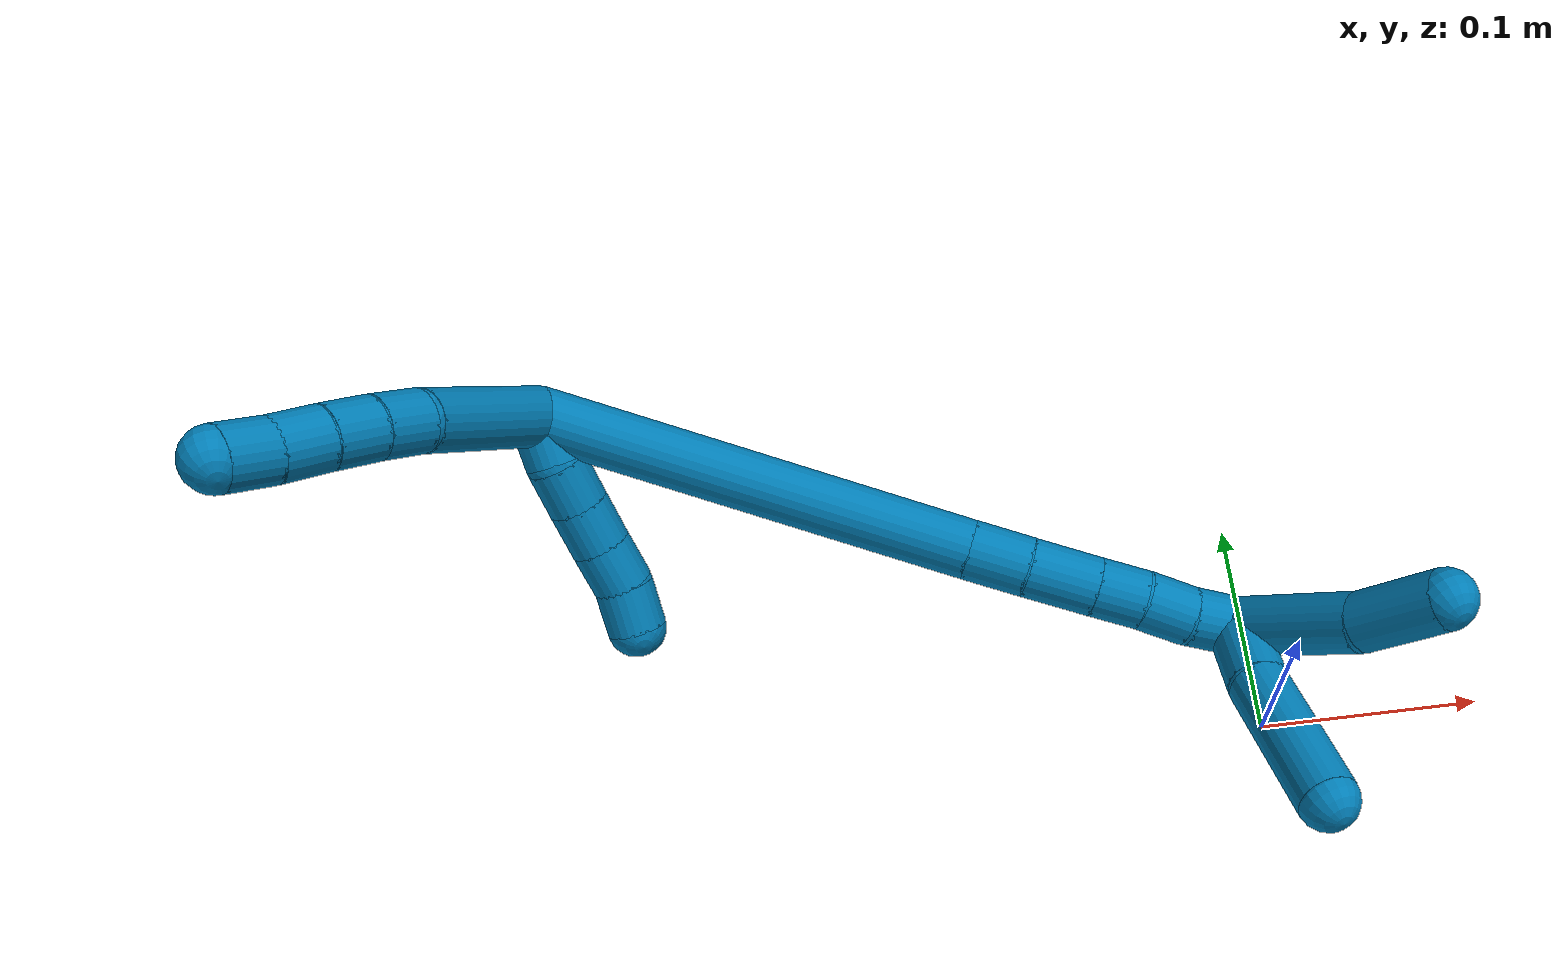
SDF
<sdf version="1.7">
 <world name="default">
  <model name="9">
   <static>0</static>
   <link name="9">
    <collision name="collision-cylinder-e_1_2_8">
     <pose>-0.028275 -0.010981 -0.016847 2.56395 -0.952572 -2.09651</pose>
     <geometry><cylinder><radius>0.0125</radius><length>0.069394</length></cylinder></geometry>
     <surface>
      <friction><ode><mu>1.16</mu><mu2>1.16</mu2><slip1>0</slip1><slip2>0</slip2></ode></friction>
      <contact><ode><kp>1e+06</kp><kd>1</kd><max_vel>0</max_vel><min_depth>0.001</min_depth></ode></contact>
     </surface>
    </collision>
    <visual name="visual-cylinder-e_1_2_8">
     <pose>-0.028275 -0.010981 -0.016847 2.56395 -0.952572 -2.09651</pose>
     <geometry><cylinder><radius>0.0125</radius><length>0.069394</length></cylinder></geometry>
     <material><ambient>0 0.490196 0.709804 1</ambient></material>
    </visual>
    <collision name="collision-cylinder-e_2_8_9">
     <pose>-0.06571 -0.023186 -0.037686 2.8441 -1.14321 -2.68383</pose>
     <geometry><cylinder><radius>0.0125</radius><length>0.020134</length></cylinder></geometry>
     <surface>
      <friction><ode><mu>1.16</mu><mu2>1.16</mu2><slip1>0</slip1><slip2>0</slip2></ode></friction>
      <contact><ode><kp>1e+06</kp><kd>1</kd><max_vel>0</max_vel><min_depth>0.001</min_depth></ode></contact>
     </surface>
    </collision>
    <visual name="visual-cylinder-e_2_8_9">
     <pose>-0.06571 -0.023186 -0.037686 2.8441 -1.14321 -2.68383</pose>
     <geometry><cylinder><radius>0.0125</radius><length>0.020134</length></cylinder></geometry>
     <material><ambient>0 0.490196 0.709804 1</ambient></material>
    </visual>
    <collision name="collision-cylinder-e_3_9_10">
     <pose>-0.084172 -0.024929 -0.045579 3.00913 -1.17042 -2.94206</pose>
     <geometry><cylinder><radius>0.0125</radius><length>0.0202</length></cylinder></geometry>
     <surface>
      <friction><ode><mu>1.16</mu><mu2>1.16</mu2><slip1>0</slip1><slip2>0</slip2></ode></friction>
      <contact><ode><kp>1e+06</kp><kd>1</kd><max_vel>0</max_vel><min_depth>0.001</min_depth></ode></contact>
     </surface>
    </collision>
    <visual name="visual-cylinder-e_3_9_10">
     <pose>-0.084172 -0.024929 -0.045579 3.00913 -1.17042 -2.94206</pose>
     <geometry><cylinder><radius>0.0125</radius><length>0.0202</length></cylinder></geometry>
     <material><ambient>0 0.490196 0.709804 1</ambient></material>
    </visual>
    <collision name="collision-cylinder-e_4_10_11">
     <pose>-0.102859 -0.025334 -0.053116 -3.11008 -1.20109 3.09558</pose>
     <geometry><cylinder><radius>0.0125</radius><length>0.020131</length></cylinder></geometry>
     <surface>
      <friction><ode><mu>1.16</mu><mu2>1.16</mu2><slip1>0</slip1><slip2>0</slip2></ode></friction>
      <contact><ode><kp>1e+06</kp><kd>1</kd><max_vel>0</max_vel><min_depth>0.001</min_depth></ode></contact>
     </surface>
    </collision>
    <visual name="visual-cylinder-e_4_10_11">
     <pose>-0.102859 -0.025334 -0.053116 -3.11008 -1.20109 3.09558</pose>
     <geometry><cylinder><radius>0.0125</radius><length>0.020131</length></cylinder></geometry>
     <material><ambient>0 0.490196 0.709804 1</ambient></material>
    </visual>
    <collision name="collision-cylinder-e_5_11_6">
     <pose>-0.121681 -0.025868 -0.060208 2.95632 -1.2141 -2.87564</pose>
     <geometry><cylinder><radius>0.0125</radius><length>0.020142</length></cylinder></geometry>
     <surface>
      <friction><ode><mu>1.16</mu><mu2>1.16</mu2><slip1>0</slip1><slip2>0</slip2></ode></friction>
      <contact><ode><kp>1e+06</kp><kd>1</kd><max_vel>0</max_vel><min_depth>0.001</min_depth></ode></contact>
     </surface>
    </collision>
    <visual name="visual-cylinder-e_5_11_6">
     <pose>-0.121681 -0.025868 -0.060208 2.95632 -1.2141 -2.87564</pose>
     <geometry><cylinder><radius>0.0125</radius><length>0.020142</length></cylinder></geometry>
     <material><ambient>0 0.490196 0.709804 1</ambient></material>
    </visual>
    <collision name="collision-cylinder-e_1_2_12">
     <pose>0.003474 0.007326 -0.005853 -2.24489 0.354789 -0.713509</pose>
     <geometry><cylinder><radius>0.0125</radius><length>0.02</length></cylinder></geometry>
     <surface>
      <friction><ode><mu>1.16</mu><mu2>1.16</mu2><slip1>0</slip1><slip2>0</slip2></ode></friction>
      <contact><ode><kp>1e+06</kp><kd>1</kd><max_vel>0</max_vel><min_depth>0.001</min_depth></ode></contact>
     </surface>
    </collision>
    <visual name="visual-cylinder-e_1_2_12">
     <pose>0.003474 0.007326 -0.005853 -2.24489 0.354789 -0.713509</pose>
     <geometry><cylinder><radius>0.0125</radius><length>0.02</length></cylinder></geometry>
     <material><ambient>0 0.490196 0.709804 1</ambient></material>
    </visual>
    <collision name="collision-cylinder-e_2_12_13">
     <pose>0.012064 0.022312 -0.0156 -2.04108 0.537015 -0.843251</pose>
     <geometry><cylinder><radius>0.0125</radius><length>0.02</length></cylinder></geometry>
     <surface>
      <friction><ode><mu>1.16</mu><mu2>1.16</mu2><slip1>0</slip1><slip2>0</slip2></ode></friction>
      <contact><ode><kp>1e+06</kp><kd>1</kd><max_vel>0</max_vel><min_depth>0.001</min_depth></ode></contact>
     </surface>
    </collision>
    <visual name="visual-cylinder-e_2_12_13">
     <pose>0.012064 0.022312 -0.0156 -2.04108 0.537015 -0.843251</pose>
     <geometry><cylinder><radius>0.0125</radius><length>0.02</length></cylinder></geometry>
     <material><ambient>0 0.490196 0.709804 1</ambient></material>
    </visual>
    <collision name="collision-cylinder-e_3_13_14">
     <pose>0.022367 0.037441 -0.023652 -2.07875 0.54537 -0.8881</pose>
     <geometry><cylinder><radius>0.0125</radius><length>0.02</length></cylinder></geometry>
     <surface>
      <friction><ode><mu>1.16</mu><mu2>1.16</mu2><slip1>0</slip1><slip2>0</slip2></ode></friction>
      <contact><ode><kp>1e+06</kp><kd>1</kd><max_vel>0</max_vel><min_depth>0.001</min_depth></ode></contact>
     </surface>
    </collision>
    <visual name="visual-cylinder-e_3_13_14">
     <pose>0.022367 0.037441 -0.023652 -2.07875 0.54537 -0.8881</pose>
     <geometry><cylinder><radius>0.0125</radius><length>0.02</length></cylinder></geometry>
     <material><ambient>0 0.490196 0.709804 1</ambient></material>
    </visual>
    <collision name="collision-cylinder-e_4_14_15">
     <pose>0.032828 0.052136 -0.032281 -2.12496 0.555552 -0.946083</pose>
     <geometry><cylinder><radius>0.0125</radius><length>0.02</length></cylinder></geometry>
     <surface>
      <friction><ode><mu>1.16</mu><mu2>1.16</mu2><slip1>0</slip1><slip2>0</slip2></ode></friction>
      <contact><ode><kp>1e+06</kp><kd>1</kd><max_vel>0</max_vel><min_depth>0.001</min_depth></ode></contact>
     </surface>
    </collision>
    <visual name="visual-cylinder-e_4_14_15">
     <pose>0.032828 0.052136 -0.032281 -2.12496 0.555552 -0.946083</pose>
     <geometry><cylinder><radius>0.0125</radius><length>0.02</length></cylinder></geometry>
     <material><ambient>0 0.490196 0.709804 1</ambient></material>
    </visual>
    <collision name="collision-cylinder-e_5_15_5">
     <pose>0.041464 0.067336 -0.041761 -2.13163 0.342833 -0.606984</pose>
     <geometry><cylinder><radius>0.0125</radius><length>0.02</length></cylinder></geometry>
     <surface>
      <friction><ode><mu>1.16</mu><mu2>1.16</mu2><slip1>0</slip1><slip2>0</slip2></ode></friction>
      <contact><ode><kp>1e+06</kp><kd>1</kd><max_vel>0</max_vel><min_depth>0.001</min_depth></ode></contact>
     </surface>
    </collision>
    <visual name="visual-cylinder-e_5_15_5">
     <pose>0.041464 0.067336 -0.041761 -2.13163 0.342833 -0.606984</pose>
     <geometry><cylinder><radius>0.0125</radius><length>0.02</length></cylinder></geometry>
     <material><ambient>0 0.490196 0.709804 1</ambient></material>
    </visual>
    <collision name="collision-cylinder-e_1_2_16">
     <pose>0.077683 -0.004465 -0.047503 3.04788 1.02001 2.97433</pose>
     <geometry><cylinder><radius>0.0125</radius><length>0.18233</length></cylinder></geometry>
     <surface>
      <friction><ode><mu>1.16</mu><mu2>1.16</mu2><slip1>0</slip1><slip2>0</slip2></ode></friction>
      <contact><ode><kp>1e+06</kp><kd>1</kd><max_vel>0</max_vel><min_depth>0.001</min_depth></ode></contact>
     </surface>
    </collision>
    <visual name="visual-cylinder-e_1_2_16">
     <pose>0.077683 -0.004465 -0.047503 3.04788 1.02001 2.97433</pose>
     <geometry><cylinder><radius>0.0125</radius><length>0.18233</length></cylinder></geometry>
     <material><ambient>0 0.490196 0.709804 1</ambient></material>
    </visual>
    <collision name="collision-cylinder-e_2_16_17">
     <pose>0.166004 -0.009735 -0.10158 3.01961 1.01396 2.92257</pose>
     <geometry><cylinder><radius>0.0125</radius><length>0.025064</length></cylinder></geometry>
     <surface>
      <friction><ode><mu>1.16</mu><mu2>1.16</mu2><slip1>0</slip1><slip2>0</slip2></ode></friction>
      <contact><ode><kp>1e+06</kp><kd>1</kd><max_vel>0</max_vel><min_depth>0.001</min_depth></ode></contact>
     </surface>
    </collision>
    <visual name="visual-cylinder-e_2_16_17">
     <pose>0.166004 -0.009735 -0.10158 3.01961 1.01396 2.92257</pose>
     <geometry><cylinder><radius>0.0125</radius><length>0.025064</length></cylinder></geometry>
     <material><ambient>0 0.490196 0.709804 1</ambient></material>
    </visual>
    <collision name="collision-cylinder-e_3_17_18">
     <pose>0.189447 -0.010972 -0.114994 3.07868 1.0793 3.03662</pose>
     <geometry><cylinder><radius>0.0125</radius><length>0.029047</length></cylinder></geometry>
     <surface>
      <friction><ode><mu>1.16</mu><mu2>1.16</mu2><slip1>0</slip1><slip2>0</slip2></ode></friction>
      <contact><ode><kp>1e+06</kp><kd>1</kd><max_vel>0</max_vel><min_depth>0.001</min_depth></ode></contact>
     </surface>
    </collision>
    <visual name="visual-cylinder-e_3_17_18">
     <pose>0.189447 -0.010972 -0.114994 3.07868 1.0793 3.03662</pose>
     <geometry><cylinder><radius>0.0125</radius><length>0.029047</length></cylinder></geometry>
     <material><ambient>0 0.490196 0.709804 1</ambient></material>
    </visual>
    <collision name="collision-cylinder-e_4_18_19">
     <pose>0.211382 -0.01173 -0.126535 3.07213 1.09442 3.02766</pose>
     <geometry><cylinder><radius>0.0125</radius><length>0.020549</length></cylinder></geometry>
     <surface>
      <friction><ode><mu>1.16</mu><mu2>1.16</mu2><slip1>0</slip1><slip2>0</slip2></ode></friction>
      <contact><ode><kp>1e+06</kp><kd>1</kd><max_vel>0</max_vel><min_depth>0.001</min_depth></ode></contact>
     </surface>
    </collision>
    <visual name="visual-cylinder-e_4_18_19">
     <pose>0.211382 -0.01173 -0.126535 3.07213 1.09442 3.02766</pose>
     <geometry><cylinder><radius>0.0125</radius><length>0.020549</length></cylinder></geometry>
     <material><ambient>0 0.490196 0.709804 1</ambient></material>
    </visual>
    <collision name="collision-cylinder-e_5_19_20">
     <pose>0.230059 -0.011298 -0.135724 -2.97403 1.12578 -2.87697</pose>
     <geometry><cylinder><radius>0.0125</radius><length>0.021154</length></cylinder></geometry>
     <surface>
      <friction><ode><mu>1.16</mu><mu2>1.16</mu2><slip1>0</slip1><slip2>0</slip2></ode></friction>
      <contact><ode><kp>1e+06</kp><kd>1</kd><max_vel>0</max_vel><min_depth>0.001</min_depth></ode></contact>
     </surface>
    </collision>
    <visual name="visual-cylinder-e_5_19_20">
     <pose>0.230059 -0.011298 -0.135724 -2.97403 1.12578 -2.87697</pose>
     <geometry><cylinder><radius>0.0125</radius><length>0.021154</length></cylinder></geometry>
     <material><ambient>0 0.490196 0.709804 1</ambient></material>
    </visual>
    <collision name="collision-cylinder-e_6_20_1">
     <pose>0.249955 -0.010456 -0.143724 -3.11808 1.24369 -3.10879</pose>
     <geometry><cylinder><radius>0.0125</radius><length>0.021857</length></cylinder></geometry>
     <surface>
      <friction><ode><mu>1.16</mu><mu2>1.16</mu2><slip1>0</slip1><slip2>0</slip2></ode></friction>
      <contact><ode><kp>1e+06</kp><kd>1</kd><max_vel>0</max_vel><min_depth>0.001</min_depth></ode></contact>
     </surface>
    </collision>
    <visual name="visual-cylinder-e_6_20_1">
     <pose>0.249955 -0.010456 -0.143724 -3.11808 1.24369 -3.10879</pose>
     <geometry><cylinder><radius>0.0125</radius><length>0.021857</length></cylinder></geometry>
     <material><ambient>0 0.490196 0.709804 1</ambient></material>
    </visual>
    <collision name="collision-cylinder-e_1_1_21">
     <pose>0.267936 -0.031192 -0.168689 2.37125 0.249963 0.601011</pose>
     <geometry><cylinder><radius>0.0125</radius><length>0.061709</length></cylinder></geometry>
     <surface>
      <friction><ode><mu>1.16</mu><mu2>1.16</mu2><slip1>0</slip1><slip2>0</slip2></ode></friction>
      <contact><ode><kp>1e+06</kp><kd>1</kd><max_vel>0</max_vel><min_depth>0.001</min_depth></ode></contact>
     </surface>
    </collision>
    <visual name="visual-cylinder-e_1_1_21">
     <pose>0.267936 -0.031192 -0.168689 2.37125 0.249963 0.601011</pose>
     <geometry><cylinder><radius>0.0125</radius><length>0.061709</length></cylinder></geometry>
     <material><ambient>0 0.490196 0.709804 1</ambient></material>
    </visual>
    <collision name="collision-cylinder-e_2_21_4">
     <pose>0.281043 -0.067237 -0.200378 2.16254 0.290001 0.535024</pose>
     <geometry><cylinder><radius>0.0125</radius><length>0.038291</length></cylinder></geometry>
     <surface>
      <friction><ode><mu>1.16</mu><mu2>1.16</mu2><slip1>0</slip1><slip2>0</slip2></ode></friction>
      <contact><ode><kp>1e+06</kp><kd>1</kd><max_vel>0</max_vel><min_depth>0.001</min_depth></ode></contact>
     </surface>
    </collision>
    <visual name="visual-cylinder-e_2_21_4">
     <pose>0.281043 -0.067237 -0.200378 2.16254 0.290001 0.535024</pose>
     <geometry><cylinder><radius>0.0125</radius><length>0.038291</length></cylinder></geometry>
     <material><ambient>0 0.490196 0.709804 1</ambient></material>
    </visual>
    <collision name="collision-cylinder-e_1_1_22">
     <pose>0.255729 -0.01063 -0.164299 3.12656 -0.26187 -3.02754</pose>
     <geometry><cylinder><radius>0.0125</radius><length>0.035339</length></cylinder></geometry>
     <surface>
      <friction><ode><mu>1.16</mu><mu2>1.16</mu2><slip1>0</slip1><slip2>0</slip2></ode></friction>
      <contact><ode><kp>1e+06</kp><kd>1</kd><max_vel>0</max_vel><min_depth>0.001</min_depth></ode></contact>
     </surface>
    </collision>
    <visual name="visual-cylinder-e_1_1_22">
     <pose>0.255729 -0.01063 -0.164299 3.12656 -0.26187 -3.02754</pose>
     <geometry><cylinder><radius>0.0125</radius><length>0.035339</length></cylinder></geometry>
     <material><ambient>0 0.490196 0.709804 1</ambient></material>
    </visual>
    <collision name="collision-cylinder-e_2_22_3">
     <pose>0.248015 -0.01211 -0.213519 3.10356 -0.097277 -2.39664</pose>
     <geometry><cylinder><radius>0.0125</radius><length>0.064661</length></cylinder></geometry>
     <surface>
      <friction><ode><mu>1.16</mu><mu2>1.16</mu2><slip1>0</slip1><slip2>0</slip2></ode></friction>
      <contact><ode><kp>1e+06</kp><kd>1</kd><max_vel>0</max_vel><min_depth>0.001</min_depth></ode></contact>
     </surface>
    </collision>
    <visual name="visual-cylinder-e_2_22_3">
     <pose>0.248015 -0.01211 -0.213519 3.10356 -0.097277 -2.39664</pose>
     <geometry><cylinder><radius>0.0125</radius><length>0.064661</length></cylinder></geometry>
     <material><ambient>0 0.490196 0.709804 1</ambient></material>
    </visual>
    <collision name="collision-sphere-3">
     <pose>0.244875 -0.013333 -0.245673 0 -0 0</pose>
     <geometry><sphere><radius>0.0125</radius></sphere></geometry>
     <surface>
      <friction><ode><mu>1.16</mu><mu2>1.16</mu2><slip1>0</slip1><slip2>0</slip2></ode></friction>
      <contact><ode><kp>1e+06</kp><kd>1</kd><max_vel>0</max_vel><min_depth>0.001</min_depth></ode></contact>
     </surface>
    </collision>
    <visual name="visual-sphere-3">
     <pose>0.244875 -0.013333 -0.245673 0 -0 0</pose>
     <geometry><sphere><radius>0.0125</radius></sphere></geometry>
     <material><ambient>0 0.490196 0.709804 1</ambient></material>
    </visual>
    <collision name="collision-sphere-22">
     <pose>0.251155 -0.010886 -0.181364 0 -0 0</pose>
     <geometry><sphere><radius>0.0125</radius></sphere></geometry>
     <surface>
      <friction><ode><mu>1.16</mu><mu2>1.16</mu2><slip1>0</slip1><slip2>0</slip2></ode></friction>
      <contact><ode><kp>1e+06</kp><kd>1</kd><max_vel>0</max_vel><min_depth>0.001</min_depth></ode></contact>
     </surface>
    </collision>
    <visual name="visual-sphere-22">
     <pose>0.251155 -0.010886 -0.181364 0 -0 0</pose>
     <geometry><sphere><radius>0.0125</radius></sphere></geometry>
     <material><ambient>0 0.490196 0.709804 1</ambient></material>
    </visual>
    <collision name="collision-sphere-4">
     <pose>0.286518 -0.082464 -0.210612 0 -0 0</pose>
     <geometry><sphere><radius>0.0125</radius></sphere></geometry>
     <surface>
      <friction><ode><mu>1.16</mu><mu2>1.16</mu2><slip1>0</slip1><slip2>0</slip2></ode></friction>
      <contact><ode><kp>1e+06</kp><kd>1</kd><max_vel>0</max_vel><min_depth>0.001</min_depth></ode></contact>
     </surface>
    </collision>
    <visual name="visual-sphere-4">
     <pose>0.286518 -0.082464 -0.210612 0 -0 0</pose>
     <geometry><sphere><radius>0.0125</radius></sphere></geometry>
     <material><ambient>0 0.490196 0.709804 1</ambient></material>
    </visual>
    <collision name="collision-sphere-21">
     <pose>0.275569 -0.05201 -0.190144 0 -0 0</pose>
     <geometry><sphere><radius>0.0125</radius></sphere></geometry>
     <surface>
      <friction><ode><mu>1.16</mu><mu2>1.16</mu2><slip1>0</slip1><slip2>0</slip2></ode></friction>
      <contact><ode><kp>1e+06</kp><kd>1</kd><max_vel>0</max_vel><min_depth>0.001</min_depth></ode></contact>
     </surface>
    </collision>
    <visual name="visual-sphere-21">
     <pose>0.275569 -0.05201 -0.190144 0 -0 0</pose>
     <geometry><sphere><radius>0.0125</radius></sphere></geometry>
     <material><ambient>0 0.490196 0.709804 1</ambient></material>
    </visual>
    <collision name="collision-sphere-1">
     <pose>0.260304 -0.010373 -0.147234 0 -0 0</pose>
     <geometry><sphere><radius>0.0125</radius></sphere></geometry>
     <surface>
      <friction><ode><mu>1.16</mu><mu2>1.16</mu2><slip1>0</slip1><slip2>0</slip2></ode></friction>
      <contact><ode><kp>1e+06</kp><kd>1</kd><max_vel>0</max_vel><min_depth>0.001</min_depth></ode></contact>
     </surface>
    </collision>
    <visual name="visual-sphere-1">
     <pose>0.260304 -0.010373 -0.147234 0 -0 0</pose>
     <geometry><sphere><radius>0.0125</radius></sphere></geometry>
     <material><ambient>0 0.490196 0.709804 1</ambient></material>
    </visual>
    <collision name="collision-sphere-6">
     <pose>-0.131118 -0.026516 -0.063664 0 -0 0</pose>
     <geometry><sphere><radius>0.0125</radius></sphere></geometry>
     <surface>
      <friction><ode><mu>1.16</mu><mu2>1.16</mu2><slip1>0</slip1><slip2>0</slip2></ode></friction>
      <contact><ode><kp>1e+06</kp><kd>1</kd><max_vel>0</max_vel><min_depth>0.001</min_depth></ode></contact>
     </surface>
    </collision>
    <visual name="visual-sphere-6">
     <pose>-0.131118 -0.026516 -0.063664 0 -0 0</pose>
     <geometry><sphere><radius>0.0125</radius></sphere></geometry>
     <material><ambient>0 0.490196 0.709804 1</ambient></material>
    </visual>
    <collision name="collision-sphere-11">
     <pose>-0.112244 -0.02522 -0.056751 0 -0 0</pose>
     <geometry><sphere><radius>0.0125</radius></sphere></geometry>
     <surface>
      <friction><ode><mu>1.16</mu><mu2>1.16</mu2><slip1>0</slip1><slip2>0</slip2></ode></friction>
      <contact><ode><kp>1e+06</kp><kd>1</kd><max_vel>0</max_vel><min_depth>0.001</min_depth></ode></contact>
     </surface>
    </collision>
    <visual name="visual-sphere-11">
     <pose>-0.112244 -0.02522 -0.056751 0 -0 0</pose>
     <geometry><sphere><radius>0.0125</radius></sphere></geometry>
     <material><ambient>0 0.490196 0.709804 1</ambient></material>
    </visual>
    <collision name="collision-sphere-10">
     <pose>-0.093473 -0.025449 -0.049481 0 -0 0</pose>
     <geometry><sphere><radius>0.0125</radius></sphere></geometry>
     <surface>
      <friction><ode><mu>1.16</mu><mu2>1.16</mu2><slip1>0</slip1><slip2>0</slip2></ode></friction>
      <contact><ode><kp>1e+06</kp><kd>1</kd><max_vel>0</max_vel><min_depth>0.001</min_depth></ode></contact>
     </surface>
    </collision>
    <visual name="visual-sphere-10">
     <pose>-0.093473 -0.025449 -0.049481 0 -0 0</pose>
     <geometry><sphere><radius>0.0125</radius></sphere></geometry>
     <material><ambient>0 0.490196 0.709804 1</ambient></material>
    </visual>
    <collision name="collision-sphere-9">
     <pose>-0.074871 -0.024409 -0.041677 0 -0 0</pose>
     <geometry><sphere><radius>0.0125</radius></sphere></geometry>
     <surface>
      <friction><ode><mu>1.16</mu><mu2>1.16</mu2><slip1>0</slip1><slip2>0</slip2></ode></friction>
      <contact><ode><kp>1e+06</kp><kd>1</kd><max_vel>0</max_vel><min_depth>0.001</min_depth></ode></contact>
     </surface>
    </collision>
    <visual name="visual-sphere-9">
     <pose>-0.074871 -0.024409 -0.041677 0 -0 0</pose>
     <geometry><sphere><radius>0.0125</radius></sphere></geometry>
     <material><ambient>0 0.490196 0.709804 1</ambient></material>
    </visual>
    <collision name="collision-sphere-2">
     <geometry><sphere><radius>0.0125</radius></sphere></geometry>
     <surface>
      <friction><ode><mu>1.16</mu><mu2>1.16</mu2><slip1>0</slip1><slip2>0</slip2></ode></friction>
      <contact><ode><kp>1e+06</kp><kd>1</kd><max_vel>0</max_vel><min_depth>0.001</min_depth></ode></contact>
     </surface>
    </collision>
    <visual name="visual-sphere-2">
     <geometry><sphere><radius>0.0125</radius></sphere></geometry>
     <material><ambient>0 0.490196 0.709804 1</ambient></material>
    </visual>
    <collision name="collision-sphere-19">
     <pose>0.220512 -0.012057 -0.131235 0 -0 0</pose>
     <geometry><sphere><radius>0.0125</radius></sphere></geometry>
     <surface>
      <friction><ode><mu>1.16</mu><mu2>1.16</mu2><slip1>0</slip1><slip2>0</slip2></ode></friction>
      <contact><ode><kp>1e+06</kp><kd>1</kd><max_vel>0</max_vel><min_depth>0.001</min_depth></ode></contact>
     </surface>
    </collision>
    <visual name="visual-sphere-19">
     <pose>0.220512 -0.012057 -0.131235 0 -0 0</pose>
     <geometry><sphere><radius>0.0125</radius></sphere></geometry>
     <material><ambient>0 0.490196 0.709804 1</ambient></material>
    </visual>
    <collision name="collision-sphere-8">
     <pose>-0.056549 -0.021962 -0.033694 0 -0 0</pose>
     <geometry><sphere><radius>0.0125</radius></sphere></geometry>
     <surface>
      <friction><ode><mu>1.16</mu><mu2>1.16</mu2><slip1>0</slip1><slip2>0</slip2></ode></friction>
      <contact><ode><kp>1e+06</kp><kd>1</kd><max_vel>0</max_vel><min_depth>0.001</min_depth></ode></contact>
     </surface>
    </collision>
    <visual name="visual-sphere-8">
     <pose>-0.056549 -0.021962 -0.033694 0 -0 0</pose>
     <geometry><sphere><radius>0.0125</radius></sphere></geometry>
     <material><ambient>0 0.490196 0.709804 1</ambient></material>
    </visual>
    <collision name="collision-sphere-12">
     <pose>0.006948 0.014652 -0.011706 0 -0 0</pose>
     <geometry><sphere><radius>0.0125</radius></sphere></geometry>
     <surface>
      <friction><ode><mu>1.16</mu><mu2>1.16</mu2><slip1>0</slip1><slip2>0</slip2></ode></friction>
      <contact><ode><kp>1e+06</kp><kd>1</kd><max_vel>0</max_vel><min_depth>0.001</min_depth></ode></contact>
     </surface>
    </collision>
    <visual name="visual-sphere-12">
     <pose>0.006948 0.014652 -0.011706 0 -0 0</pose>
     <geometry><sphere><radius>0.0125</radius></sphere></geometry>
     <material><ambient>0 0.490196 0.709804 1</ambient></material>
    </visual>
    <collision name="collision-sphere-13">
     <pose>0.017179 0.029972 -0.019493 0 -0 0</pose>
     <geometry><sphere><radius>0.0125</radius></sphere></geometry>
     <surface>
      <friction><ode><mu>1.16</mu><mu2>1.16</mu2><slip1>0</slip1><slip2>0</slip2></ode></friction>
      <contact><ode><kp>1e+06</kp><kd>1</kd><max_vel>0</max_vel><min_depth>0.001</min_depth></ode></contact>
     </surface>
    </collision>
    <visual name="visual-sphere-13">
     <pose>0.017179 0.029972 -0.019493 0 -0 0</pose>
     <geometry><sphere><radius>0.0125</radius></sphere></geometry>
     <material><ambient>0 0.490196 0.709804 1</ambient></material>
    </visual>
    <collision name="collision-sphere-14">
     <pose>0.027554 0.044911 -0.02781 0 -0 0</pose>
     <geometry><sphere><radius>0.0125</radius></sphere></geometry>
     <surface>
      <friction><ode><mu>1.16</mu><mu2>1.16</mu2><slip1>0</slip1><slip2>0</slip2></ode></friction>
      <contact><ode><kp>1e+06</kp><kd>1</kd><max_vel>0</max_vel><min_depth>0.001</min_depth></ode></contact>
     </surface>
    </collision>
    <visual name="visual-sphere-14">
     <pose>0.027554 0.044911 -0.02781 0 -0 0</pose>
     <geometry><sphere><radius>0.0125</radius></sphere></geometry>
     <material><ambient>0 0.490196 0.709804 1</ambient></material>
    </visual>
    <collision name="collision-sphere-15">
     <pose>0.038102 0.059361 -0.036752 0 -0 0</pose>
     <geometry><sphere><radius>0.0125</radius></sphere></geometry>
     <surface>
      <friction><ode><mu>1.16</mu><mu2>1.16</mu2><slip1>0</slip1><slip2>0</slip2></ode></friction>
      <contact><ode><kp>1e+06</kp><kd>1</kd><max_vel>0</max_vel><min_depth>0.001</min_depth></ode></contact>
     </surface>
    </collision>
    <visual name="visual-sphere-15">
     <pose>0.038102 0.059361 -0.036752 0 -0 0</pose>
     <geometry><sphere><radius>0.0125</radius></sphere></geometry>
     <material><ambient>0 0.490196 0.709804 1</ambient></material>
    </visual>
    <collision name="collision-sphere-5">
     <pose>0.044825 0.075311 -0.046771 0 -0 0</pose>
     <geometry><sphere><radius>0.0125</radius></sphere></geometry>
     <surface>
      <friction><ode><mu>1.16</mu><mu2>1.16</mu2><slip1>0</slip1><slip2>0</slip2></ode></friction>
      <contact><ode><kp>1e+06</kp><kd>1</kd><max_vel>0</max_vel><min_depth>0.001</min_depth></ode></contact>
     </surface>
    </collision>
    <visual name="visual-sphere-5">
     <pose>0.044825 0.075311 -0.046771 0 -0 0</pose>
     <geometry><sphere><radius>0.0125</radius></sphere></geometry>
     <material><ambient>0 0.490196 0.709804 1</ambient></material>
    </visual>
    <collision name="collision-sphere-16">
     <pose>0.155366 -0.008929 -0.095006 0 -0 0</pose>
     <geometry><sphere><radius>0.0125</radius></sphere></geometry>
     <surface>
      <friction><ode><mu>1.16</mu><mu2>1.16</mu2><slip1>0</slip1><slip2>0</slip2></ode></friction>
      <contact><ode><kp>1e+06</kp><kd>1</kd><max_vel>0</max_vel><min_depth>0.001</min_depth></ode></contact>
     </surface>
    </collision>
    <visual name="visual-sphere-16">
     <pose>0.155366 -0.008929 -0.095006 0 -0 0</pose>
     <geometry><sphere><radius>0.0125</radius></sphere></geometry>
     <material><ambient>0 0.490196 0.709804 1</ambient></material>
    </visual>
    <collision name="collision-sphere-17">
     <pose>0.176643 -0.010541 -0.108153 0 -0 0</pose>
     <geometry><sphere><radius>0.0125</radius></sphere></geometry>
     <surface>
      <friction><ode><mu>1.16</mu><mu2>1.16</mu2><slip1>0</slip1><slip2>0</slip2></ode></friction>
      <contact><ode><kp>1e+06</kp><kd>1</kd><max_vel>0</max_vel><min_depth>0.001</min_depth></ode></contact>
     </surface>
    </collision>
    <visual name="visual-sphere-17">
     <pose>0.176643 -0.010541 -0.108153 0 -0 0</pose>
     <geometry><sphere><radius>0.0125</radius></sphere></geometry>
     <material><ambient>0 0.490196 0.709804 1</ambient></material>
    </visual>
    <collision name="collision-sphere-18">
     <pose>0.202251 -0.011403 -0.121835 0 -0 0</pose>
     <geometry><sphere><radius>0.0125</radius></sphere></geometry>
     <surface>
      <friction><ode><mu>1.16</mu><mu2>1.16</mu2><slip1>0</slip1><slip2>0</slip2></ode></friction>
      <contact><ode><kp>1e+06</kp><kd>1</kd><max_vel>0</max_vel><min_depth>0.001</min_depth></ode></contact>
     </surface>
    </collision>
    <visual name="visual-sphere-18">
     <pose>0.202251 -0.011403 -0.121835 0 -0 0</pose>
     <geometry><sphere><radius>0.0125</radius></sphere></geometry>
     <material><ambient>0 0.490196 0.709804 1</ambient></material>
    </visual>
    <collision name="collision-sphere-20">
     <pose>0.239606 -0.010538 -0.140214 0 -0 0</pose>
     <geometry><sphere><radius>0.0125</radius></sphere></geometry>
     <surface>
      <friction><ode><mu>1.16</mu><mu2>1.16</mu2><slip1>0</slip1><slip2>0</slip2></ode></friction>
      <contact><ode><kp>1e+06</kp><kd>1</kd><max_vel>0</max_vel><min_depth>0.001</min_depth></ode></contact>
     </surface>
    </collision>
    <visual name="visual-sphere-20">
     <pose>0.239606 -0.010538 -0.140214 0 -0 0</pose>
     <geometry><sphere><radius>0.0125</radius></sphere></geometry>
     <material><ambient>0 0.490196 0.709804 1</ambient></material>
    </visual>
    <inertial>
     <pose>0.111477 -0.009034 -0.091158 0 -0 0</pose>
     <mass>0.75</mass>
     <inertia>
      <ixx>-0.000239</ixx>
      <ixy>0</ixy>
      <ixz>0</ixz>
      <iyy>0.000579</iyy>
      <iyz>0</iyz>
      <izz>-0.000404</izz>
     </inertia>
    </inertial>
   </link>
   <pose>-0.298203 0.115661 0.148716 -1.91436 0.435688 0.119871</pose>
  </model>
 </world>
</sdf>
